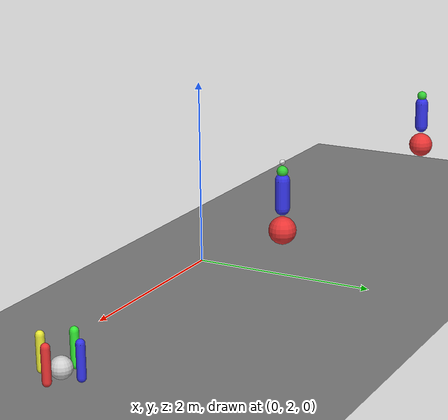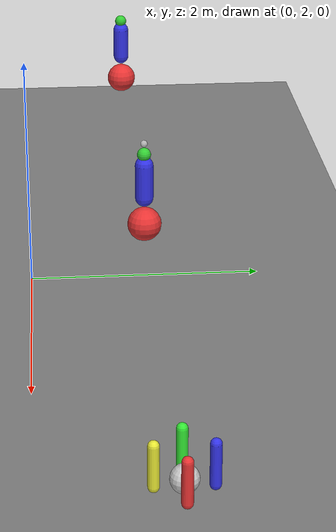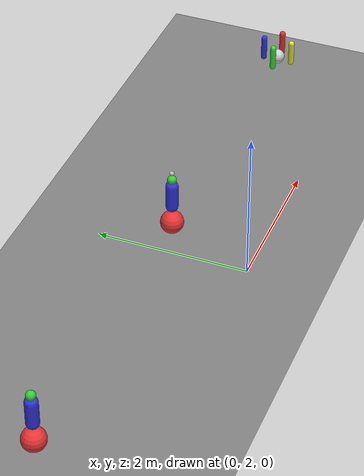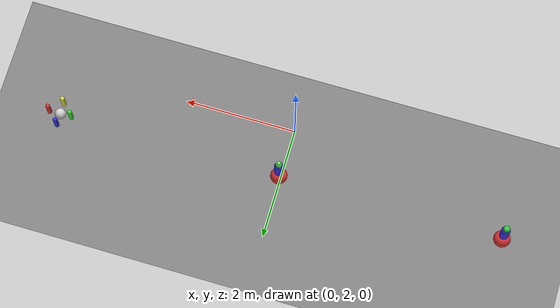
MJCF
<!-- body嵌套树状结构演示 -->
<mujoco model="body_tree">
    <compiler angle="radian"/>
    <option timestep="0.002" gravity="0 0 -9.81"/>

    <visual>
        <global realtime="1"/>
        <quality shadowsize="1024"/>
        <headlight diffuse="1 1 1" specular="0.5 0.5 0.5" active="1"/>
    </visual>

    <asset>
        <texture name="grid" type="2d" builtin="checker" width="512" height="512"
                 rgb1=".2 .2 .2" rgb2=".8 .8 .8"/>
        <material name="grid" texture="grid"/>
    </asset>

    <worldbody>
        <geom name="floor" type="plane" size="20 20 .01" material="grid" condim="3"/>

        <!--
        坐标树演示:
        每个body的pos都是相对于父body的局部坐标
        A (根) → B (子) → C (孙)
        A在世界坐标(0,0,0.5), B相对A向上0.5, C相对B再向上0.5
        所以C在世界坐标中位于(0,0,1.5)
        -->

        <!-- 三层嵌套: A→B→C -->
        <body name="A" pos="0 3 0.5">
            <freejoint/>
            <!-- A自身的geom -->
            <geom type="sphere" size="0.15" rgba=".9 .2 .2 1"/>
            <site name="A_site" type="sphere" size="0.05" rgba="1 1 1 .5" pos="0 0 0.3"/>

            <!-- B: 相对于A向上0.4 -->
            <body name="B" pos="0 0 0.4">
                <geom type="capsule" size="0.08 0.15" rgba=".2 .2 .9 1"/>
                <site name="B_site" type="sphere" size="0.04" rgba="1 1 1 .5" pos="0 0 0.2"/>

                <!-- C: 相对于B向上0.25 -->
                <body name="C" pos="0 0 0.25">
                    <geom type="sphere" size="0.06" rgba=".2 .8 .2 1"/>
                    <site name="C_site" type="sphere" size="0.03" rgba="1 1 1 .5" pos="0 0 0.1"/>
                </body>
            </body>
        </body>

        <!-- 对比: 三个独立body并列（非嵌套），各自独立运动 -->
        <body pos="-4 3 0.5">
            <freejoint/>
            <geom type="sphere" size="0.15" rgba=".9 .2 .2 1"/>
        </body>
        <body pos="-4 3 0.9">
            <freejoint/>
            <geom type="capsule" size="0.08 0.15" rgba=".2 .2 .9 1"/>
        </body>
        <body pos="-4 3 1.15">
            <freejoint/>
            <geom type="sphere" size="0.06" rgba=".2 .8 .2 1"/>
        </body>

        <!-- 蜘蛛腿式嵌套: 从中心向四周展开 -->
        <body name="center" pos="4 3 0.5">
            <freejoint/>
            <geom type="sphere" size="0.1" rgba=".8 .8 .8 1"/>

            <body name="leg1" pos="0.2 0 0.1">
                <geom type="capsule" size="0.04 0.15" rgba=".9 .2 .2 1"/>
            </body>
            <body name="leg2" pos="-0.2 0 0.1">
                <geom type="capsule" size="0.04 0.15" rgba=".2 .9 .2 1"/>
            </body>
            <body name="leg3" pos="0 0.2 0.1">
                <geom type="capsule" size="0.04 0.15" rgba=".2 .2 .9 1"/>
            </body>
            <body name="leg4" pos="0 -0.2 0.1">
                <geom type="capsule" size="0.04 0.15" rgba=".9 .9 .2 1"/>
            </body>
        </body>
    </worldbody>
</mujoco>
